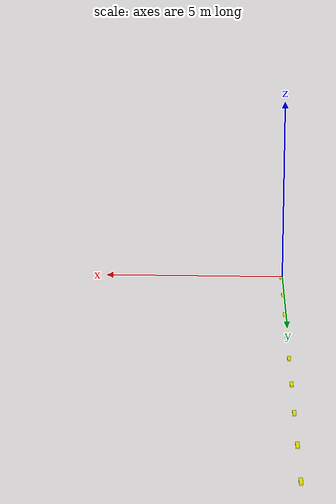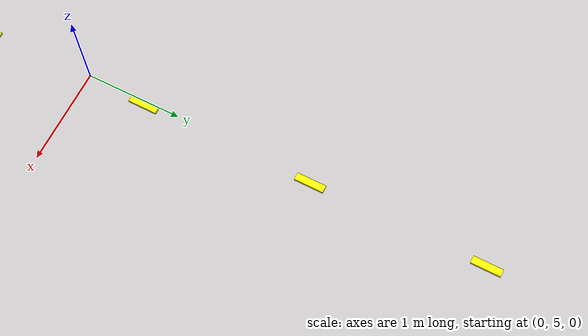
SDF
<?xml version="1.0" ?>
<sdf version="1.5">
  <model name="yellow_stripe_dashed">
    <static>true</static>
    <link name="yellow_stripe_dashed_link">
        <collision name="yellow_stripe_dashed_collision">
         <geometry>
            <mesh>
                <uri>model://yellow_stripe_dashed/meshes/model.dae</uri>
                <scale>0.5 0.5 0.5</scale>
            </mesh>
        </geometry>
      </collision>

      <visual name="yellow_stripe_dashed_mesh">
        <cast_shadows>true</cast_shadows>
        <geometry>
            <mesh>
                <uri>model://yellow_stripe_dashed/meshes/model.dae</uri>
                <scale>0.5 0.5 0.5</scale>
            </mesh>
        </geometry>
      </visual>
    </link>
  </model>
</sdf>
